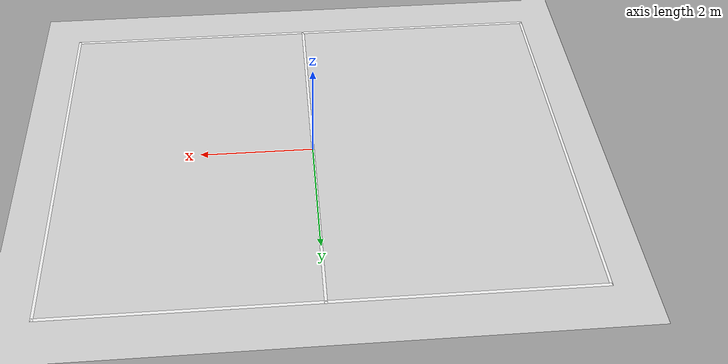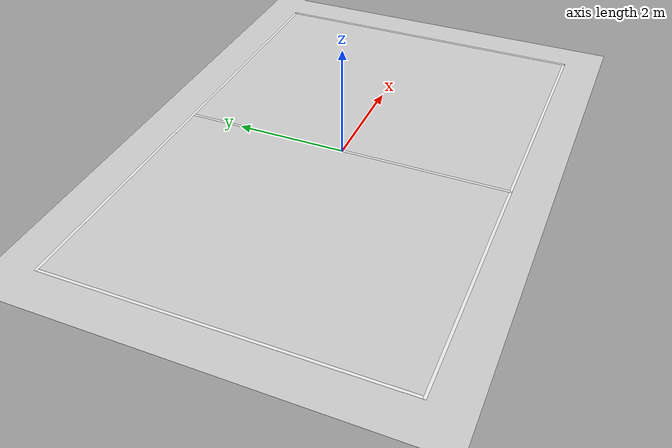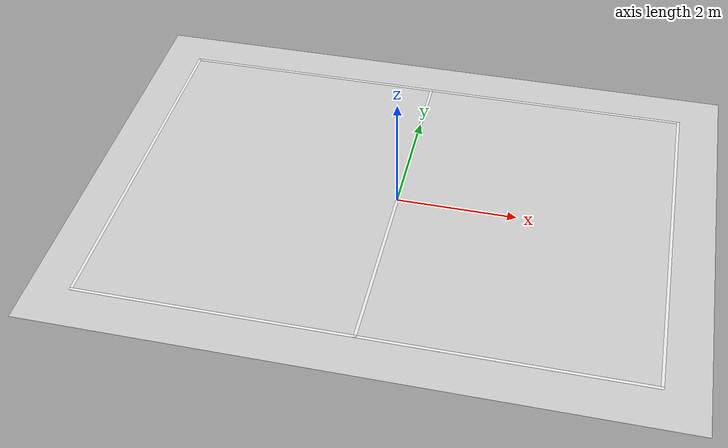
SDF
<sdf version="1.4">
 <world name="demo">
  <physics type="ode"><real_time_update_rate>3000</real_time_update_rate></physics>
  <model name="RoboCup 14 SPL Field">
   <static>1</static>
   <link name="field">
    <pose>0 0 0.001 0 -0 0</pose>
    <collision name="collision">
     <geometry><plane><normal>0 0 1</normal><size>10.4 7.4</size></plane></geometry>
     <surface><friction><ode><mu>100</mu><mu2>50</mu2></ode></friction></surface>
    </collision>
    <visual name="carpet">
     <cast_shadows>0</cast_shadows>
     <geometry><plane><normal>0 0 1</normal><size>10.4 7.4</size></plane></geometry>
     <material>
      <script>
       <uri>model://robocup09_spl_field/materials/scripts/</uri>
       <uri>model://robocup09_spl_field/materials/textures/</uri>
       <name>RoboCup/Carpet</name>
      </script>
     </material>
    </visual>
    <visual name="sideline_1">
     <pose>0 3 0.011 0 -0 0</pose>
     <cast_shadows>0</cast_shadows>
     <geometry><plane><normal>0 0 1</normal><size>9.05 0.05</size></plane></geometry>
     <material>
      <script><uri>file://media/materials/scripts/gazebo.material</uri><name>Gazebo/White</name></script>
     </material>
    </visual>
    <visual name="sideline_2">
     <pose>0 -3 0.011 0 -0 0</pose>
     <cast_shadows>0</cast_shadows>
     <geometry><plane><normal>0 0 1</normal><size>9.05 0.05</size></plane></geometry>
     <material>
      <script><uri>file://media/materials/scripts/gazebo.material</uri><name>Gazebo/White</name></script>
     </material>
    </visual>
    <visual name="endline_1">
     <pose>-4.5 0 0.011 0 -0 0</pose>
     <cast_shadows>0</cast_shadows>
     <geometry><plane><normal>0 0 1</normal><size>0.05 6.05</size></plane></geometry>
     <material>
      <script><uri>file://media/materials/scripts/gazebo.material</uri><name>Gazebo/White</name></script>
     </material>
    </visual>
    <visual name="endline_2">
     <pose>4.5 0 0.011 0 -0 0</pose>
     <cast_shadows>0</cast_shadows>
     <geometry><plane><normal>0 0 1</normal><size>0.05 6.05</size></plane></geometry>
     <material>
      <script><uri>file://media/materials/scripts/gazebo.material</uri><name>Gazebo/White</name></script>
     </material>
    </visual>
    <visual name="halfway_line">
     <pose>0 0 0.011 0 -0 0</pose>
     <cast_shadows>0</cast_shadows>
     <geometry><plane><normal>0 0 1</normal><size>0.05 6.05</size></plane></geometry>
     <material>
      <script><uri>file://media/materials/scripts/gazebo.material</uri><name>Gazebo/White</name></script>
     </material>
    </visual>
    <velocity_decay><linear>0</linear><angular>0</angular></velocity_decay>
   </link>
  </model>
  <light type="spot" name="spot">
   <diffuse>1 0 0 1</diffuse>
   <specular>.2 .2 .2 1</specular>
   <attenuation>
    <range>1</range>
    <linear>0.10</linear>
    <constant>0.1</constant>
    <quadratic>0.0</quadratic>
   </attenuation>
   <direction>0 0 -1</direction>
   <spot><inner_angle>0.02</inner_angle><outer_angle>0.15</outer_angle><falloff>1</falloff></spot>
  </light>
  <light name="user_directional_light_0" type="directional">
   <pose>0 0 3 0 0 0</pose>
   <diffuse>0.5 0.5 0.5 1</diffuse>
   <specular>0.1 0.1 0.1 1</specular>
   <direction>0.1 0.1 -0.9</direction>
   <attenuation>
    <range>20</range>
    <constant>0.5</constant>
    <linear>0.01</linear>
    <quadratic>0.001</quadratic>
   </attenuation>
  </light>
  <include><uri>model://sun</uri></include>
  <include><uri>model://ground_plane</uri></include>
 </world>
</sdf>
